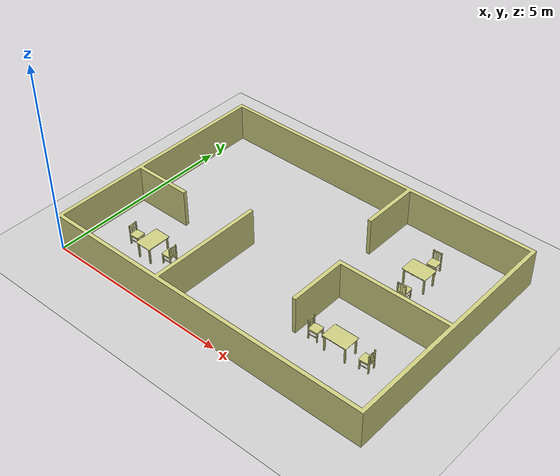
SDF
<sdf version='1.4'>
  <world name='default'>
    <!-- A global light source -->
    <include>
      <uri>model://sun</uri>
    </include>

    <!-- Own physics settings to speed up simulation -->
    <physics type='ode'>
      <max_step_size>0.01</max_step_size>
      <real_time_factor>1</real_time_factor>
      <real_time_update_rate>100</real_time_update_rate>
      <gravity>0 0 -9.8</gravity>
    </physics>

    <!-- A ground plane -->
    <include>
      <uri>model://ground_plane</uri>
    </include>

    <!-- The arena (walls, tables, chairs) -->
    <model name='lucia_arena'>
      <static>true</static>
      <link name='lucia_arena_link'>
        <pose>0 0 0 0 0 0</pose>
        <collision name='lucia_arena_collision'>
          <geometry>
            <mesh>
              <uri>file://lucia_arena.stl</uri>
              <scale>1 1 1</scale>
            </mesh>
          </geometry>
        </collision>
        <visual name='lucia_arena_visual'>
          <cast_shadows>false</cast_shadows>
          <geometry>
            <mesh>
              <uri>file://lucia_arena.stl</uri>
              <scale>1 1 1</scale>
            </mesh>
          </geometry>
          <material>
            <ambient>0.8 0.8 0.5 1</ambient>
            <diffuse>0.8 0.8 0.5 1</diffuse>
            <specular>0.1 0.1 0.1 1</specular>
            <emissive>0 0 0 0</emissive>
          </material>
        </visual>
      </link>
    </model>

    <gui fullscreen='false'>
      <camera name='user_camera'>
        <pose>4.74351 -3.80075 9.59163 -9.59421e-17 0.953797 1.5722</pose>
        <view_controller>orbit</view_controller>
      </camera>
    </gui>
  </world>
</sdf>
